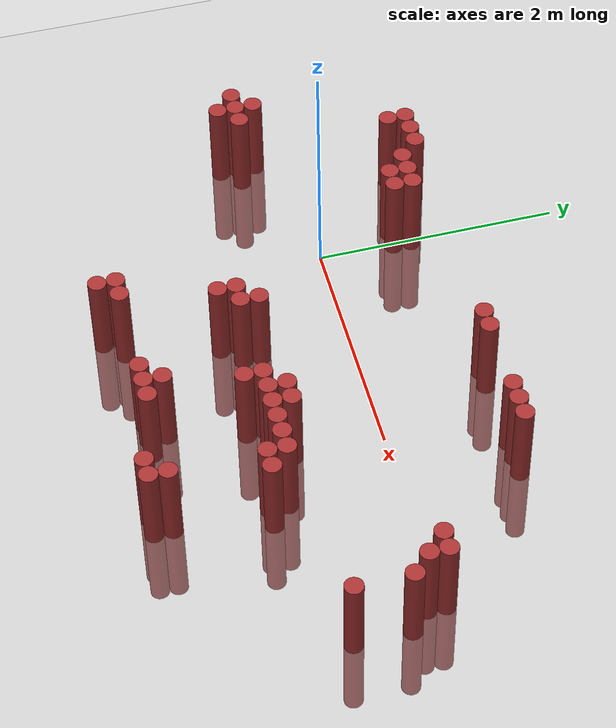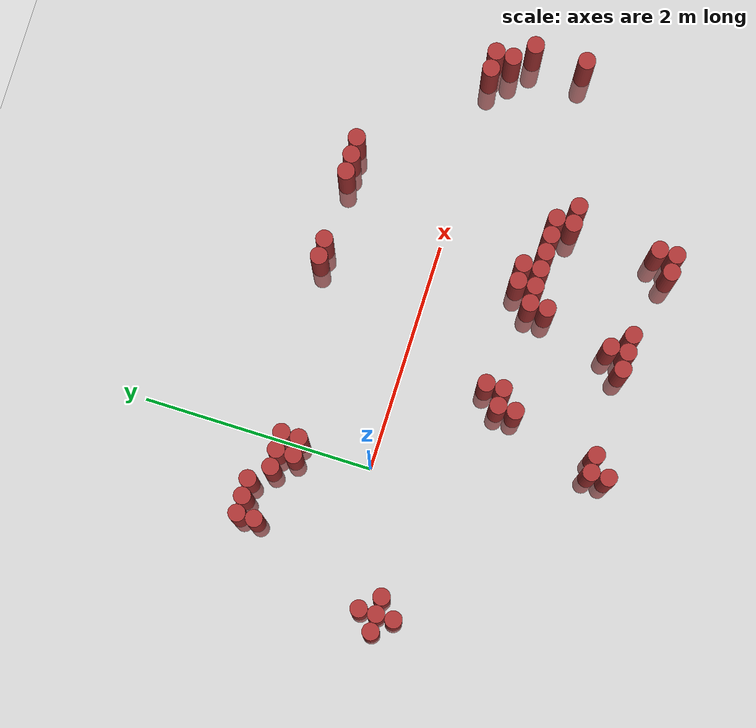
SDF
<sdf version="1.6">
 <world name="default">
  <model name="ground_plane">
   <static>1</static>
   <link name="link">
    <collision name="collision">
     <geometry><plane><normal>0 0 1</normal><size>100 100</size></plane></geometry>
     <surface><friction><ode><mu>100</mu><mu2>50</mu2></ode></friction></surface>
    </collision>
    <visual name="visual">
     <cast_shadows>0</cast_shadows>
     <geometry><plane><normal>0 0 1</normal><size>100 100</size></plane></geometry>
     <material>
      <script><uri>file://media/materials/scripts/gazebo.material</uri><name>Gazebo/Grey</name></script>
     </material>
    </visual>
   </link>
  </model>
  <model name="unit_cylinder_338">
   <static>1</static>
   <pose>-1.325000 -0.425000 0.000000 0.000000 0.000000 0.000000</pose>
   <link name="link">
    <inertial>
     <mass>1</mass>
     <inertia><ixx>0.145833</ixx><ixy>0</ixy><ixz>0</ixz><iyy>0.145833</iyy><iyz>0</iyz><izz>0.125</izz></inertia>
    </inertial>
    <collision name="collision">
     <geometry><cylinder><radius>0.075000</radius><length>1.5</length></cylinder></geometry>
    </collision>
    <visual name="visual">
     <geometry><cylinder><radius>0.075000</radius><length>1.5</length></cylinder></geometry>
     <material>
      <ambient>0.648000 0.192000 0.192000 1</ambient>
      <diffuse>0.648000 0.192000 0.192000 1</diffuse>
     </material>
     <material>
      <script><name>Gazebo/Grey</name><uri>file://media/materials/scripts/gazebo.material</uri></script>
     </material>
    </visual>
   </link>
  </model>
  <model name="unit_cylinder_340">
   <static>1</static>
   <pose>-1.175000 -0.575000 0.000000 0.000000 0.000000 0.000000</pose>
   <link name="link">
    <inertial>
     <mass>1</mass>
     <inertia><ixx>0.145833</ixx><ixy>0</ixy><ixz>0</ixz><iyy>0.145833</iyy><iyz>0</iyz><izz>0.125</izz></inertia>
    </inertial>
    <collision name="collision">
     <geometry><cylinder><radius>0.075000</radius><length>1.5</length></cylinder></geometry>
    </collision>
    <visual name="visual">
     <geometry><cylinder><radius>0.075000</radius><length>1.5</length></cylinder></geometry>
     <material>
      <ambient>0.648000 0.192000 0.192000 1</ambient>
      <diffuse>0.648000 0.192000 0.192000 1</diffuse>
     </material>
     <material>
      <script><name>Gazebo/Grey</name><uri>file://media/materials/scripts/gazebo.material</uri></script>
     </material>
    </visual>
   </link>
  </model>
  <model name="unit_cylinder_341">
   <static>1</static>
   <pose>-1.175000 -0.425000 0.000000 0.000000 0.000000 0.000000</pose>
   <link name="link">
    <inertial>
     <mass>1</mass>
     <inertia><ixx>0.145833</ixx><ixy>0</ixy><ixz>0</ixz><iyy>0.145833</iyy><iyz>0</iyz><izz>0.125</izz></inertia>
    </inertial>
    <collision name="collision">
     <geometry><cylinder><radius>0.075000</radius><length>1.5</length></cylinder></geometry>
    </collision>
    <visual name="visual">
     <geometry><cylinder><radius>0.075000</radius><length>1.5</length></cylinder></geometry>
     <material>
      <ambient>0.648000 0.192000 0.192000 1</ambient>
      <diffuse>0.648000 0.192000 0.192000 1</diffuse>
     </material>
     <material>
      <script><name>Gazebo/Grey</name><uri>file://media/materials/scripts/gazebo.material</uri></script>
     </material>
    </visual>
   </link>
  </model>
  <model name="unit_cylinder_342">
   <static>1</static>
   <pose>-1.175000 -0.275000 0.000000 0.000000 0.000000 0.000000</pose>
   <link name="link">
    <inertial>
     <mass>1</mass>
     <inertia><ixx>0.145833</ixx><ixy>0</ixy><ixz>0</ixz><iyy>0.145833</iyy><iyz>0</iyz><izz>0.125</izz></inertia>
    </inertial>
    <collision name="collision">
     <geometry><cylinder><radius>0.075000</radius><length>1.5</length></cylinder></geometry>
    </collision>
    <visual name="visual">
     <geometry><cylinder><radius>0.075000</radius><length>1.5</length></cylinder></geometry>
     <material>
      <ambient>0.648000 0.192000 0.192000 1</ambient>
      <diffuse>0.648000 0.192000 0.192000 1</diffuse>
     </material>
     <material>
      <script><name>Gazebo/Grey</name><uri>file://media/materials/scripts/gazebo.material</uri></script>
     </material>
    </visual>
   </link>
  </model>
  <model name="unit_cylinder_343">
   <static>1</static>
   <pose>-1.025000 -0.425000 0.000000 0.000000 0.000000 0.000000</pose>
   <link name="link">
    <inertial>
     <mass>1</mass>
     <inertia><ixx>0.145833</ixx><ixy>0</ixy><ixz>0</ixz><iyy>0.145833</iyy><iyz>0</iyz><izz>0.125</izz></inertia>
    </inertial>
    <collision name="collision">
     <geometry><cylinder><radius>0.075000</radius><length>1.5</length></cylinder></geometry>
    </collision>
    <visual name="visual">
     <geometry><cylinder><radius>0.075000</radius><length>1.5</length></cylinder></geometry>
     <material>
      <ambient>0.648000 0.192000 0.192000 1</ambient>
      <diffuse>0.648000 0.192000 0.192000 1</diffuse>
     </material>
     <material>
      <script><name>Gazebo/Grey</name><uri>file://media/materials/scripts/gazebo.material</uri></script>
     </material>
    </visual>
   </link>
  </model>
  <model name="unit_cylinder_344">
   <static>1</static>
   <pose>-0.725000 0.775000 0.000000 0.000000 0.000000 0.000000</pose>
   <link name="link">
    <inertial>
     <mass>1</mass>
     <inertia><ixx>0.145833</ixx><ixy>0</ixy><ixz>0</ixz><iyy>0.145833</iyy><iyz>0</iyz><izz>0.125</izz></inertia>
    </inertial>
    <collision name="collision">
     <geometry><cylinder><radius>0.075000</radius><length>1.5</length></cylinder></geometry>
    </collision>
    <visual name="visual">
     <geometry><cylinder><radius>0.075000</radius><length>1.5</length></cylinder></geometry>
     <material>
      <ambient>0.648000 0.192000 0.192000 1</ambient>
      <diffuse>0.648000 0.192000 0.192000 1</diffuse>
     </material>
     <material>
      <script><name>Gazebo/Grey</name><uri>file://media/materials/scripts/gazebo.material</uri></script>
     </material>
    </visual>
   </link>
  </model>
  <model name="unit_cylinder_345">
   <static>1</static>
   <pose>-0.725000 0.925000 0.000000 0.000000 0.000000 0.000000</pose>
   <link name="link">
    <inertial>
     <mass>1</mass>
     <inertia><ixx>0.145833</ixx><ixy>0</ixy><ixz>0</ixz><iyy>0.145833</iyy><iyz>0</iyz><izz>0.125</izz></inertia>
    </inertial>
    <collision name="collision">
     <geometry><cylinder><radius>0.075000</radius><length>1.5</length></cylinder></geometry>
    </collision>
    <visual name="visual">
     <geometry><cylinder><radius>0.075000</radius><length>1.5</length></cylinder></geometry>
     <material>
      <ambient>0.648000 0.192000 0.192000 1</ambient>
      <diffuse>0.648000 0.192000 0.192000 1</diffuse>
     </material>
     <material>
      <script><name>Gazebo/Grey</name><uri>file://media/materials/scripts/gazebo.material</uri></script>
     </material>
    </visual>
   </link>
  </model>
  <model name="unit_cylinder_346">
   <static>1</static>
   <pose>-0.575000 0.925000 0.000000 0.000000 0.000000 0.000000</pose>
   <link name="link">
    <inertial>
     <mass>1</mass>
     <inertia><ixx>0.145833</ixx><ixy>0</ixy><ixz>0</ixz><iyy>0.145833</iyy><iyz>0</iyz><izz>0.125</izz></inertia>
    </inertial>
    <collision name="collision">
     <geometry><cylinder><radius>0.075000</radius><length>1.5</length></cylinder></geometry>
    </collision>
    <visual name="visual">
     <geometry><cylinder><radius>0.075000</radius><length>1.5</length></cylinder></geometry>
     <material>
      <ambient>0.648000 0.192000 0.192000 1</ambient>
      <diffuse>0.648000 0.192000 0.192000 1</diffuse>
     </material>
     <material>
      <script><name>Gazebo/Grey</name><uri>file://media/materials/scripts/gazebo.material</uri></script>
     </material>
    </visual>
   </link>
  </model>
  <model name="unit_cylinder_347">
   <static>1</static>
   <pose>-0.425000 0.925000 0.000000 0.000000 0.000000 0.000000</pose>
   <link name="link">
    <inertial>
     <mass>1</mass>
     <inertia><ixx>0.145833</ixx><ixy>0</ixy><ixz>0</ixz><iyy>0.145833</iyy><iyz>0</iyz><izz>0.125</izz></inertia>
    </inertial>
    <collision name="collision">
     <geometry><cylinder><radius>0.075000</radius><length>1.5</length></cylinder></geometry>
    </collision>
    <visual name="visual">
     <geometry><cylinder><radius>0.075000</radius><length>1.5</length></cylinder></geometry>
     <material>
      <ambient>0.648000 0.192000 0.192000 1</ambient>
      <diffuse>0.648000 0.192000 0.192000 1</diffuse>
     </material>
     <material>
      <script><name>Gazebo/Grey</name><uri>file://media/materials/scripts/gazebo.material</uri></script>
     </material>
    </visual>
   </link>
  </model>
  <model name="unit_cylinder_350">
   <static>1</static>
   <pose>-0.275000 0.775000 0.000000 0.000000 0.000000 0.000000</pose>
   <link name="link">
    <inertial>
     <mass>1</mass>
     <inertia><ixx>0.145833</ixx><ixy>0</ixy><ixz>0</ixz><iyy>0.145833</iyy><iyz>0</iyz><izz>0.125</izz></inertia>
    </inertial>
    <collision name="collision">
     <geometry><cylinder><radius>0.075000</radius><length>1.5</length></cylinder></geometry>
    </collision>
    <visual name="visual">
     <geometry><cylinder><radius>0.075000</radius><length>1.5</length></cylinder></geometry>
     <material>
      <ambient>0.648000 0.192000 0.192000 1</ambient>
      <diffuse>0.648000 0.192000 0.192000 1</diffuse>
     </material>
     <material>
      <script><name>Gazebo/Grey</name><uri>file://media/materials/scripts/gazebo.material</uri></script>
     </material>
    </visual>
   </link>
  </model>
  <model name="unit_cylinder_353">
   <static>1</static>
   <pose>-0.125000 0.625000 0.000000 0.000000 0.000000 0.000000</pose>
   <link name="link">
    <inertial>
     <mass>1</mass>
     <inertia><ixx>0.145833</ixx><ixy>0</ixy><ixz>0</ixz><iyy>0.145833</iyy><iyz>0</iyz><izz>0.125</izz></inertia>
    </inertial>
    <collision name="collision">
     <geometry><cylinder><radius>0.075000</radius><length>1.5</length></cylinder></geometry>
    </collision>
    <visual name="visual">
     <geometry><cylinder><radius>0.075000</radius><length>1.5</length></cylinder></geometry>
     <material>
      <ambient>0.648000 0.192000 0.192000 1</ambient>
      <diffuse>0.648000 0.192000 0.192000 1</diffuse>
     </material>
     <material>
      <script><name>Gazebo/Grey</name><uri>file://media/materials/scripts/gazebo.material</uri></script>
     </material>
    </visual>
   </link>
  </model>
  <model name="unit_cylinder_354">
   <static>1</static>
   <pose>-0.125000 0.775000 0.000000 0.000000 0.000000 0.000000</pose>
   <link name="link">
    <inertial>
     <mass>1</mass>
     <inertia><ixx>0.145833</ixx><ixy>0</ixy><ixz>0</ixz><iyy>0.145833</iyy><iyz>0</iyz><izz>0.125</izz></inertia>
    </inertial>
    <collision name="collision">
     <geometry><cylinder><radius>0.075000</radius><length>1.5</length></cylinder></geometry>
    </collision>
    <visual name="visual">
     <geometry><cylinder><radius>0.075000</radius><length>1.5</length></cylinder></geometry>
     <material>
      <ambient>0.648000 0.192000 0.192000 1</ambient>
      <diffuse>0.648000 0.192000 0.192000 1</diffuse>
     </material>
     <material>
      <script><name>Gazebo/Grey</name><uri>file://media/materials/scripts/gazebo.material</uri></script>
     </material>
    </visual>
   </link>
  </model>
  <model name="unit_cylinder_359">
   <static>1</static>
   <pose>0.025000 0.625000 0.000000 0.000000 0.000000 0.000000</pose>
   <link name="link">
    <inertial>
     <mass>1</mass>
     <inertia><ixx>0.145833</ixx><ixy>0</ixy><ixz>0</ixz><iyy>0.145833</iyy><iyz>0</iyz><izz>0.125</izz></inertia>
    </inertial>
    <collision name="collision">
     <geometry><cylinder><radius>0.075000</radius><length>1.5</length></cylinder></geometry>
    </collision>
    <visual name="visual">
     <geometry><cylinder><radius>0.075000</radius><length>1.5</length></cylinder></geometry>
     <material>
      <ambient>0.648000 0.192000 0.192000 1</ambient>
      <diffuse>0.648000 0.192000 0.192000 1</diffuse>
     </material>
     <material>
      <script><name>Gazebo/Grey</name><uri>file://media/materials/scripts/gazebo.material</uri></script>
     </material>
    </visual>
   </link>
  </model>
  <model name="unit_cylinder_360">
   <static>1</static>
   <pose>0.025000 0.775000 0.000000 0.000000 0.000000 0.000000</pose>
   <link name="link">
    <inertial>
     <mass>1</mass>
     <inertia><ixx>0.145833</ixx><ixy>0</ixy><ixz>0</ixz><iyy>0.145833</iyy><iyz>0</iyz><izz>0.125</izz></inertia>
    </inertial>
    <collision name="collision">
     <geometry><cylinder><radius>0.075000</radius><length>1.5</length></cylinder></geometry>
    </collision>
    <visual name="visual">
     <geometry><cylinder><radius>0.075000</radius><length>1.5</length></cylinder></geometry>
     <material>
      <ambient>0.648000 0.192000 0.192000 1</ambient>
      <diffuse>0.648000 0.192000 0.192000 1</diffuse>
     </material>
     <material>
      <script><name>Gazebo/Grey</name><uri>file://media/materials/scripts/gazebo.material</uri></script>
     </material>
    </visual>
   </link>
  </model>
  <model name="unit_cylinder_365">
   <static>1</static>
   <pose>0.475000 -1.925000 0.000000 0.000000 0.000000 0.000000</pose>
   <link name="link">
    <inertial>
     <mass>1</mass>
     <inertia><ixx>0.145833</ixx><ixy>0</ixy><ixz>0</ixz><iyy>0.145833</iyy><iyz>0</iyz><izz>0.125</izz></inertia>
    </inertial>
    <collision name="collision">
     <geometry><cylinder><radius>0.075000</radius><length>1.5</length></cylinder></geometry>
    </collision>
    <visual name="visual">
     <geometry><cylinder><radius>0.075000</radius><length>1.5</length></cylinder></geometry>
     <material>
      <ambient>0.648000 0.192000 0.192000 1</ambient>
      <diffuse>0.648000 0.192000 0.192000 1</diffuse>
     </material>
     <material>
      <script><name>Gazebo/Grey</name><uri>file://media/materials/scripts/gazebo.material</uri></script>
     </material>
    </visual>
   </link>
  </model>
  <model name="unit_cylinder_366">
   <static>1</static>
   <pose>0.475000 -1.775000 0.000000 0.000000 0.000000 0.000000</pose>
   <link name="link">
    <inertial>
     <mass>1</mass>
     <inertia><ixx>0.145833</ixx><ixy>0</ixy><ixz>0</ixz><iyy>0.145833</iyy><iyz>0</iyz><izz>0.125</izz></inertia>
    </inertial>
    <collision name="collision">
     <geometry><cylinder><radius>0.075000</radius><length>1.5</length></cylinder></geometry>
    </collision>
    <visual name="visual">
     <geometry><cylinder><radius>0.075000</radius><length>1.5</length></cylinder></geometry>
     <material>
      <ambient>0.648000 0.192000 0.192000 1</ambient>
      <diffuse>0.648000 0.192000 0.192000 1</diffuse>
     </material>
     <material>
      <script><name>Gazebo/Grey</name><uri>file://media/materials/scripts/gazebo.material</uri></script>
     </material>
    </visual>
   </link>
  </model>
  <model name="unit_cylinder_370">
   <static>1</static>
   <pose>0.625000 -1.775000 0.000000 0.000000 0.000000 0.000000</pose>
   <link name="link">
    <inertial>
     <mass>1</mass>
     <inertia><ixx>0.145833</ixx><ixy>0</ixy><ixz>0</ixz><iyy>0.145833</iyy><iyz>0</iyz><izz>0.125</izz></inertia>
    </inertial>
    <collision name="collision">
     <geometry><cylinder><radius>0.075000</radius><length>1.5</length></cylinder></geometry>
    </collision>
    <visual name="visual">
     <geometry><cylinder><radius>0.075000</radius><length>1.5</length></cylinder></geometry>
     <material>
      <ambient>0.648000 0.192000 0.192000 1</ambient>
      <diffuse>0.648000 0.192000 0.192000 1</diffuse>
     </material>
     <material>
      <script><name>Gazebo/Grey</name><uri>file://media/materials/scripts/gazebo.material</uri></script>
     </material>
    </visual>
   </link>
  </model>
  <model name="unit_cylinder_375">
   <static>1</static>
   <pose>0.775000 -1.025000 0.000000 0.000000 0.000000 0.000000</pose>
   <link name="link">
    <inertial>
     <mass>1</mass>
     <inertia><ixx>0.145833</ixx><ixy>0</ixy><ixz>0</ixz><iyy>0.145833</iyy><iyz>0</iyz><izz>0.125</izz></inertia>
    </inertial>
    <collision name="collision">
     <geometry><cylinder><radius>0.075000</radius><length>1.5</length></cylinder></geometry>
    </collision>
    <visual name="visual">
     <geometry><cylinder><radius>0.075000</radius><length>1.5</length></cylinder></geometry>
     <material>
      <ambient>0.648000 0.192000 0.192000 1</ambient>
      <diffuse>0.648000 0.192000 0.192000 1</diffuse>
     </material>
     <material>
      <script><name>Gazebo/Grey</name><uri>file://media/materials/scripts/gazebo.material</uri></script>
     </material>
    </visual>
   </link>
  </model>
  <model name="unit_cylinder_376">
   <static>1</static>
   <pose>0.775000 -0.875000 0.000000 0.000000 0.000000 0.000000</pose>
   <link name="link">
    <inertial>
     <mass>1</mass>
     <inertia><ixx>0.145833</ixx><ixy>0</ixy><ixz>0</ixz><iyy>0.145833</iyy><iyz>0</iyz><izz>0.125</izz></inertia>
    </inertial>
    <collision name="collision">
     <geometry><cylinder><radius>0.075000</radius><length>1.5</length></cylinder></geometry>
    </collision>
    <visual name="visual">
     <geometry><cylinder><radius>0.075000</radius><length>1.5</length></cylinder></geometry>
     <material>
      <ambient>0.648000 0.192000 0.192000 1</ambient>
      <diffuse>0.648000 0.192000 0.192000 1</diffuse>
     </material>
     <material>
      <script><name>Gazebo/Grey</name><uri>file://media/materials/scripts/gazebo.material</uri></script>
     </material>
    </visual>
   </link>
  </model>
  <model name="unit_cylinder_378">
   <static>1</static>
   <pose>0.925000 -0.875000 0.000000 0.000000 0.000000 0.000000</pose>
   <link name="link">
    <inertial>
     <mass>1</mass>
     <inertia><ixx>0.145833</ixx><ixy>0</ixy><ixz>0</ixz><iyy>0.145833</iyy><iyz>0</iyz><izz>0.125</izz></inertia>
    </inertial>
    <collision name="collision">
     <geometry><cylinder><radius>0.075000</radius><length>1.5</length></cylinder></geometry>
    </collision>
    <visual name="visual">
     <geometry><cylinder><radius>0.075000</radius><length>1.5</length></cylinder></geometry>
     <material>
      <ambient>0.648000 0.192000 0.192000 1</ambient>
      <diffuse>0.648000 0.192000 0.192000 1</diffuse>
     </material>
     <material>
      <script><name>Gazebo/Grey</name><uri>file://media/materials/scripts/gazebo.material</uri></script>
     </material>
    </visual>
   </link>
  </model>
  <model name="unit_cylinder_379">
   <static>1</static>
   <pose>0.925000 -0.725000 0.000000 0.000000 0.000000 0.000000</pose>
   <link name="link">
    <inertial>
     <mass>1</mass>
     <inertia><ixx>0.145833</ixx><ixy>0</ixy><ixz>0</ixz><iyy>0.145833</iyy><iyz>0</iyz><izz>0.125</izz></inertia>
    </inertial>
    <collision name="collision">
     <geometry><cylinder><radius>0.075000</radius><length>1.5</length></cylinder></geometry>
    </collision>
    <visual name="visual">
     <geometry><cylinder><radius>0.075000</radius><length>1.5</length></cylinder></geometry>
     <material>
      <ambient>0.648000 0.192000 0.192000 1</ambient>
      <diffuse>0.648000 0.192000 0.192000 1</diffuse>
     </material>
     <material>
      <script><name>Gazebo/Grey</name><uri>file://media/materials/scripts/gazebo.material</uri></script>
     </material>
    </visual>
   </link>
  </model>
  <model name="unit_cylinder_383">
   <static>1</static>
   <pose>1.375000 -1.775000 0.000000 0.000000 0.000000 0.000000</pose>
   <link name="link">
    <inertial>
     <mass>1</mass>
     <inertia><ixx>0.145833</ixx><ixy>0</ixy><ixz>0</ixz><iyy>0.145833</iyy><iyz>0</iyz><izz>0.125</izz></inertia>
    </inertial>
    <collision name="collision">
     <geometry><cylinder><radius>0.075000</radius><length>1.5</length></cylinder></geometry>
    </collision>
    <visual name="visual">
     <geometry><cylinder><radius>0.075000</radius><length>1.5</length></cylinder></geometry>
     <material>
      <ambient>0.648000 0.192000 0.192000 1</ambient>
      <diffuse>0.648000 0.192000 0.192000 1</diffuse>
     </material>
     <material>
      <script><name>Gazebo/Grey</name><uri>file://media/materials/scripts/gazebo.material</uri></script>
     </material>
    </visual>
   </link>
  </model>
  <model name="unit_cylinder_384">
   <static>1</static>
   <pose>1.525000 -1.775000 0.000000 0.000000 0.000000 0.000000</pose>
   <link name="link">
    <inertial>
     <mass>1</mass>
     <inertia><ixx>0.145833</ixx><ixy>0</ixy><ixz>0</ixz><iyy>0.145833</iyy><iyz>0</iyz><izz>0.125</izz></inertia>
    </inertial>
    <collision name="collision">
     <geometry><cylinder><radius>0.075000</radius><length>1.5</length></cylinder></geometry>
    </collision>
    <visual name="visual">
     <geometry><cylinder><radius>0.075000</radius><length>1.5</length></cylinder></geometry>
     <material>
      <ambient>0.648000 0.192000 0.192000 1</ambient>
      <diffuse>0.648000 0.192000 0.192000 1</diffuse>
     </material>
     <material>
      <script><name>Gazebo/Grey</name><uri>file://media/materials/scripts/gazebo.material</uri></script>
     </material>
    </visual>
   </link>
  </model>
  <model name="unit_cylinder_385">
   <static>1</static>
   <pose>1.525000 -1.625000 0.000000 0.000000 0.000000 0.000000</pose>
   <link name="link">
    <inertial>
     <mass>1</mass>
     <inertia><ixx>0.145833</ixx><ixy>0</ixy><ixz>0</ixz><iyy>0.145833</iyy><iyz>0</iyz><izz>0.125</izz></inertia>
    </inertial>
    <collision name="collision">
     <geometry><cylinder><radius>0.075000</radius><length>1.5</length></cylinder></geometry>
    </collision>
    <visual name="visual">
     <geometry><cylinder><radius>0.075000</radius><length>1.5</length></cylinder></geometry>
     <material>
      <ambient>0.648000 0.192000 0.192000 1</ambient>
      <diffuse>0.648000 0.192000 0.192000 1</diffuse>
     </material>
     <material>
      <script><name>Gazebo/Grey</name><uri>file://media/materials/scripts/gazebo.material</uri></script>
     </material>
    </visual>
   </link>
  </model>
  <model name="unit_cylinder_386">
   <static>1</static>
   <pose>1.525000 0.925000 0.000000 0.000000 0.000000 0.000000</pose>
   <link name="link">
    <inertial>
     <mass>1</mass>
     <inertia><ixx>0.145833</ixx><ixy>0</ixy><ixz>0</ixz><iyy>0.145833</iyy><iyz>0</iyz><izz>0.125</izz></inertia>
    </inertial>
    <collision name="collision">
     <geometry><cylinder><radius>0.075000</radius><length>1.5</length></cylinder></geometry>
    </collision>
    <visual name="visual">
     <geometry><cylinder><radius>0.075000</radius><length>1.5</length></cylinder></geometry>
     <material>
      <ambient>0.648000 0.192000 0.192000 1</ambient>
      <diffuse>0.648000 0.192000 0.192000 1</diffuse>
     </material>
     <material>
      <script><name>Gazebo/Grey</name><uri>file://media/materials/scripts/gazebo.material</uri></script>
     </material>
    </visual>
   </link>
  </model>
  <model name="unit_cylinder_387">
   <static>1</static>
   <pose>1.675000 -1.775000 0.000000 0.000000 0.000000 0.000000</pose>
   <link name="link">
    <inertial>
     <mass>1</mass>
     <inertia><ixx>0.145833</ixx><ixy>0</ixy><ixz>0</ixz><iyy>0.145833</iyy><iyz>0</iyz><izz>0.125</izz></inertia>
    </inertial>
    <collision name="collision">
     <geometry><cylinder><radius>0.075000</radius><length>1.5</length></cylinder></geometry>
    </collision>
    <visual name="visual">
     <geometry><cylinder><radius>0.075000</radius><length>1.5</length></cylinder></geometry>
     <material>
      <ambient>0.648000 0.192000 0.192000 1</ambient>
      <diffuse>0.648000 0.192000 0.192000 1</diffuse>
     </material>
     <material>
      <script><name>Gazebo/Grey</name><uri>file://media/materials/scripts/gazebo.material</uri></script>
     </material>
    </visual>
   </link>
  </model>
  <model name="unit_cylinder_388">
   <static>1</static>
   <pose>1.675000 -1.025000 0.000000 0.000000 0.000000 0.000000</pose>
   <link name="link">
    <inertial>
     <mass>1</mass>
     <inertia><ixx>0.145833</ixx><ixy>0</ixy><ixz>0</ixz><iyy>0.145833</iyy><iyz>0</iyz><izz>0.125</izz></inertia>
    </inertial>
    <collision name="collision">
     <geometry><cylinder><radius>0.075000</radius><length>1.5</length></cylinder></geometry>
    </collision>
    <visual name="visual">
     <geometry><cylinder><radius>0.075000</radius><length>1.5</length></cylinder></geometry>
     <material>
      <ambient>0.648000 0.192000 0.192000 1</ambient>
      <diffuse>0.648000 0.192000 0.192000 1</diffuse>
     </material>
     <material>
      <script><name>Gazebo/Grey</name><uri>file://media/materials/scripts/gazebo.material</uri></script>
     </material>
    </visual>
   </link>
  </model>
  <model name="unit_cylinder_389">
   <static>1</static>
   <pose>1.675000 -0.875000 0.000000 0.000000 0.000000 0.000000</pose>
   <link name="link">
    <inertial>
     <mass>1</mass>
     <inertia><ixx>0.145833</ixx><ixy>0</ixy><ixz>0</ixz><iyy>0.145833</iyy><iyz>0</iyz><izz>0.125</izz></inertia>
    </inertial>
    <collision name="collision">
     <geometry><cylinder><radius>0.075000</radius><length>1.5</length></cylinder></geometry>
    </collision>
    <visual name="visual">
     <geometry><cylinder><radius>0.075000</radius><length>1.5</length></cylinder></geometry>
     <material>
      <ambient>0.648000 0.192000 0.192000 1</ambient>
      <diffuse>0.648000 0.192000 0.192000 1</diffuse>
     </material>
     <material>
      <script><name>Gazebo/Grey</name><uri>file://media/materials/scripts/gazebo.material</uri></script>
     </material>
    </visual>
   </link>
  </model>
  <model name="unit_cylinder_390">
   <static>1</static>
   <pose>1.675000 0.925000 0.000000 0.000000 0.000000 0.000000</pose>
   <link name="link">
    <inertial>
     <mass>1</mass>
     <inertia><ixx>0.145833</ixx><ixy>0</ixy><ixz>0</ixz><iyy>0.145833</iyy><iyz>0</iyz><izz>0.125</izz></inertia>
    </inertial>
    <collision name="collision">
     <geometry><cylinder><radius>0.075000</radius><length>1.5</length></cylinder></geometry>
    </collision>
    <visual name="visual">
     <geometry><cylinder><radius>0.075000</radius><length>1.5</length></cylinder></geometry>
     <material>
      <ambient>0.648000 0.192000 0.192000 1</ambient>
      <diffuse>0.648000 0.192000 0.192000 1</diffuse>
     </material>
     <material>
      <script><name>Gazebo/Grey</name><uri>file://media/materials/scripts/gazebo.material</uri></script>
     </material>
    </visual>
   </link>
  </model>
  <model name="unit_cylinder_392">
   <static>1</static>
   <pose>1.825000 -0.875000 0.000000 0.000000 0.000000 0.000000</pose>
   <link name="link">
    <inertial>
     <mass>1</mass>
     <inertia><ixx>0.145833</ixx><ixy>0</ixy><ixz>0</ixz><iyy>0.145833</iyy><iyz>0</iyz><izz>0.125</izz></inertia>
    </inertial>
    <collision name="collision">
     <geometry><cylinder><radius>0.075000</radius><length>1.5</length></cylinder></geometry>
    </collision>
    <visual name="visual">
     <geometry><cylinder><radius>0.075000</radius><length>1.5</length></cylinder></geometry>
     <material>
      <ambient>0.648000 0.192000 0.192000 1</ambient>
      <diffuse>0.648000 0.192000 0.192000 1</diffuse>
     </material>
     <material>
      <script><name>Gazebo/Grey</name><uri>file://media/materials/scripts/gazebo.material</uri></script>
     </material>
    </visual>
   </link>
  </model>
  <model name="unit_cylinder_393">
   <static>1</static>
   <pose>1.825000 -0.725000 0.000000 0.000000 0.000000 0.000000</pose>
   <link name="link">
    <inertial>
     <mass>1</mass>
     <inertia><ixx>0.145833</ixx><ixy>0</ixy><ixz>0</ixz><iyy>0.145833</iyy><iyz>0</iyz><izz>0.125</izz></inertia>
    </inertial>
    <collision name="collision">
     <geometry><cylinder><radius>0.075000</radius><length>1.5</length></cylinder></geometry>
    </collision>
    <visual name="visual">
     <geometry><cylinder><radius>0.075000</radius><length>1.5</length></cylinder></geometry>
     <material>
      <ambient>0.648000 0.192000 0.192000 1</ambient>
      <diffuse>0.648000 0.192000 0.192000 1</diffuse>
     </material>
     <material>
      <script><name>Gazebo/Grey</name><uri>file://media/materials/scripts/gazebo.material</uri></script>
     </material>
    </visual>
   </link>
  </model>
  <model name="unit_cylinder_394">
   <static>1</static>
   <pose>1.975000 -0.875000 0.000000 0.000000 0.000000 0.000000</pose>
   <link name="link">
    <inertial>
     <mass>1</mass>
     <inertia><ixx>0.145833</ixx><ixy>0</ixy><ixz>0</ixz><iyy>0.145833</iyy><iyz>0</iyz><izz>0.125</izz></inertia>
    </inertial>
    <collision name="collision">
     <geometry><cylinder><radius>0.075000</radius><length>1.5</length></cylinder></geometry>
    </collision>
    <visual name="visual">
     <geometry><cylinder><radius>0.075000</radius><length>1.5</length></cylinder></geometry>
     <material>
      <ambient>0.648000 0.192000 0.192000 1</ambient>
      <diffuse>0.648000 0.192000 0.192000 1</diffuse>
     </material>
     <material>
      <script><name>Gazebo/Grey</name><uri>file://media/materials/scripts/gazebo.material</uri></script>
     </material>
    </visual>
   </link>
  </model>
  <model name="unit_cylinder_395">
   <static>1</static>
   <pose>1.975000 -0.725000 0.000000 0.000000 0.000000 0.000000</pose>
   <link name="link">
    <inertial>
     <mass>1</mass>
     <inertia><ixx>0.145833</ixx><ixy>0</ixy><ixz>0</ixz><iyy>0.145833</iyy><iyz>0</iyz><izz>0.125</izz></inertia>
    </inertial>
    <collision name="collision">
     <geometry><cylinder><radius>0.075000</radius><length>1.5</length></cylinder></geometry>
    </collision>
    <visual name="visual">
     <geometry><cylinder><radius>0.075000</radius><length>1.5</length></cylinder></geometry>
     <material>
      <ambient>0.648000 0.192000 0.192000 1</ambient>
      <diffuse>0.648000 0.192000 0.192000 1</diffuse>
     </material>
     <material>
      <script><name>Gazebo/Grey</name><uri>file://media/materials/scripts/gazebo.material</uri></script>
     </material>
    </visual>
   </link>
  </model>
  <model name="unit_cylinder_397">
   <static>1</static>
   <pose>2.125000 -0.875000 0.000000 0.000000 0.000000 0.000000</pose>
   <link name="link">
    <inertial>
     <mass>1</mass>
     <inertia><ixx>0.145833</ixx><ixy>0</ixy><ixz>0</ixz><iyy>0.145833</iyy><iyz>0</iyz><izz>0.125</izz></inertia>
    </inertial>
    <collision name="collision">
     <geometry><cylinder><radius>0.075000</radius><length>1.5</length></cylinder></geometry>
    </collision>
    <visual name="visual">
     <geometry><cylinder><radius>0.075000</radius><length>1.5</length></cylinder></geometry>
     <material>
      <ambient>0.648000 0.192000 0.192000 1</ambient>
      <diffuse>0.648000 0.192000 0.192000 1</diffuse>
     </material>
     <material>
      <script><name>Gazebo/Grey</name><uri>file://media/materials/scripts/gazebo.material</uri></script>
     </material>
    </visual>
   </link>
  </model>
  <model name="unit_cylinder_400">
   <static>1</static>
   <pose>2.275000 -1.925000 0.000000 0.000000 0.000000 0.000000</pose>
   <link name="link">
    <inertial>
     <mass>1</mass>
     <inertia><ixx>0.145833</ixx><ixy>0</ixy><ixz>0</ixz><iyy>0.145833</iyy><iyz>0</iyz><izz>0.125</izz></inertia>
    </inertial>
    <collision name="collision">
     <geometry><cylinder><radius>0.075000</radius><length>1.5</length></cylinder></geometry>
    </collision>
    <visual name="visual">
     <geometry><cylinder><radius>0.075000</radius><length>1.5</length></cylinder></geometry>
     <material>
      <ambient>0.648000 0.192000 0.192000 1</ambient>
      <diffuse>0.648000 0.192000 0.192000 1</diffuse>
     </material>
     <material>
      <script><name>Gazebo/Grey</name><uri>file://media/materials/scripts/gazebo.material</uri></script>
     </material>
    </visual>
   </link>
  </model>
  <model name="unit_cylinder_401">
   <static>1</static>
   <pose>2.275000 -0.875000 0.000000 0.000000 0.000000 0.000000</pose>
   <link name="link">
    <inertial>
     <mass>1</mass>
     <inertia><ixx>0.145833</ixx><ixy>0</ixy><ixz>0</ixz><iyy>0.145833</iyy><iyz>0</iyz><izz>0.125</izz></inertia>
    </inertial>
    <collision name="collision">
     <geometry><cylinder><radius>0.075000</radius><length>1.5</length></cylinder></geometry>
    </collision>
    <visual name="visual">
     <geometry><cylinder><radius>0.075000</radius><length>1.5</length></cylinder></geometry>
     <material>
      <ambient>0.648000 0.192000 0.192000 1</ambient>
      <diffuse>0.648000 0.192000 0.192000 1</diffuse>
     </material>
     <material>
      <script><name>Gazebo/Grey</name><uri>file://media/materials/scripts/gazebo.material</uri></script>
     </material>
    </visual>
   </link>
  </model>
  <model name="unit_cylinder_402">
   <static>1</static>
   <pose>2.275000 0.925000 0.000000 0.000000 0.000000 0.000000</pose>
   <link name="link">
    <inertial>
     <mass>1</mass>
     <inertia><ixx>0.145833</ixx><ixy>0</ixy><ixz>0</ixz><iyy>0.145833</iyy><iyz>0</iyz><izz>0.125</izz></inertia>
    </inertial>
    <collision name="collision">
     <geometry><cylinder><radius>0.075000</radius><length>1.5</length></cylinder></geometry>
    </collision>
    <visual name="visual">
     <geometry><cylinder><radius>0.075000</radius><length>1.5</length></cylinder></geometry>
     <material>
      <ambient>0.648000 0.192000 0.192000 1</ambient>
      <diffuse>0.648000 0.192000 0.192000 1</diffuse>
     </material>
     <material>
      <script><name>Gazebo/Grey</name><uri>file://media/materials/scripts/gazebo.material</uri></script>
     </material>
    </visual>
   </link>
  </model>
  <model name="unit_cylinder_404">
   <static>1</static>
   <pose>2.425000 -1.925000 0.000000 0.000000 0.000000 0.000000</pose>
   <link name="link">
    <inertial>
     <mass>1</mass>
     <inertia><ixx>0.145833</ixx><ixy>0</ixy><ixz>0</ixz><iyy>0.145833</iyy><iyz>0</iyz><izz>0.125</izz></inertia>
    </inertial>
    <collision name="collision">
     <geometry><cylinder><radius>0.075000</radius><length>1.5</length></cylinder></geometry>
    </collision>
    <visual name="visual">
     <geometry><cylinder><radius>0.075000</radius><length>1.5</length></cylinder></geometry>
     <material>
      <ambient>0.648000 0.192000 0.192000 1</ambient>
      <diffuse>0.648000 0.192000 0.192000 1</diffuse>
     </material>
     <material>
      <script><name>Gazebo/Grey</name><uri>file://media/materials/scripts/gazebo.material</uri></script>
     </material>
    </visual>
   </link>
  </model>
  <model name="unit_cylinder_405">
   <static>1</static>
   <pose>2.425000 -1.775000 0.000000 0.000000 0.000000 0.000000</pose>
   <link name="link">
    <inertial>
     <mass>1</mass>
     <inertia><ixx>0.145833</ixx><ixy>0</ixy><ixz>0</ixz><iyy>0.145833</iyy><iyz>0</iyz><izz>0.125</izz></inertia>
    </inertial>
    <collision name="collision">
     <geometry><cylinder><radius>0.075000</radius><length>1.5</length></cylinder></geometry>
    </collision>
    <visual name="visual">
     <geometry><cylinder><radius>0.075000</radius><length>1.5</length></cylinder></geometry>
     <material>
      <ambient>0.648000 0.192000 0.192000 1</ambient>
      <diffuse>0.648000 0.192000 0.192000 1</diffuse>
     </material>
     <material>
      <script><name>Gazebo/Grey</name><uri>file://media/materials/scripts/gazebo.material</uri></script>
     </material>
    </visual>
   </link>
  </model>
  <model name="unit_cylinder_406">
   <static>1</static>
   <pose>2.425000 -1.025000 0.000000 0.000000 0.000000 0.000000</pose>
   <link name="link">
    <inertial>
     <mass>1</mass>
     <inertia><ixx>0.145833</ixx><ixy>0</ixy><ixz>0</ixz><iyy>0.145833</iyy><iyz>0</iyz><izz>0.125</izz></inertia>
    </inertial>
    <collision name="collision">
     <geometry><cylinder><radius>0.075000</radius><length>1.5</length></cylinder></geometry>
    </collision>
    <visual name="visual">
     <geometry><cylinder><radius>0.075000</radius><length>1.5</length></cylinder></geometry>
     <material>
      <ambient>0.648000 0.192000 0.192000 1</ambient>
      <diffuse>0.648000 0.192000 0.192000 1</diffuse>
     </material>
     <material>
      <script><name>Gazebo/Grey</name><uri>file://media/materials/scripts/gazebo.material</uri></script>
     </material>
    </visual>
   </link>
  </model>
  <model name="unit_cylinder_407">
   <static>1</static>
   <pose>2.425000 -0.875000 0.000000 0.000000 0.000000 0.000000</pose>
   <link name="link">
    <inertial>
     <mass>1</mass>
     <inertia><ixx>0.145833</ixx><ixy>0</ixy><ixz>0</ixz><iyy>0.145833</iyy><iyz>0</iyz><izz>0.125</izz></inertia>
    </inertial>
    <collision name="collision">
     <geometry><cylinder><radius>0.075000</radius><length>1.5</length></cylinder></geometry>
    </collision>
    <visual name="visual">
     <geometry><cylinder><radius>0.075000</radius><length>1.5</length></cylinder></geometry>
     <material>
      <ambient>0.648000 0.192000 0.192000 1</ambient>
      <diffuse>0.648000 0.192000 0.192000 1</diffuse>
     </material>
     <material>
      <script><name>Gazebo/Grey</name><uri>file://media/materials/scripts/gazebo.material</uri></script>
     </material>
    </visual>
   </link>
  </model>
  <model name="unit_cylinder_408">
   <static>1</static>
   <pose>2.425000 0.925000 0.000000 0.000000 0.000000 0.000000</pose>
   <link name="link">
    <inertial>
     <mass>1</mass>
     <inertia><ixx>0.145833</ixx><ixy>0</ixy><ixz>0</ixz><iyy>0.145833</iyy><iyz>0</iyz><izz>0.125</izz></inertia>
    </inertial>
    <collision name="collision">
     <geometry><cylinder><radius>0.075000</radius><length>1.5</length></cylinder></geometry>
    </collision>
    <visual name="visual">
     <geometry><cylinder><radius>0.075000</radius><length>1.5</length></cylinder></geometry>
     <material>
      <ambient>0.648000 0.192000 0.192000 1</ambient>
      <diffuse>0.648000 0.192000 0.192000 1</diffuse>
     </material>
     <material>
      <script><name>Gazebo/Grey</name><uri>file://media/materials/scripts/gazebo.material</uri></script>
     </material>
    </visual>
   </link>
  </model>
  <model name="unit_cylinder_410">
   <static>1</static>
   <pose>2.575000 -1.025000 0.000000 0.000000 0.000000 0.000000</pose>
   <link name="link">
    <inertial>
     <mass>1</mass>
     <inertia><ixx>0.145833</ixx><ixy>0</ixy><ixz>0</ixz><iyy>0.145833</iyy><iyz>0</iyz><izz>0.125</izz></inertia>
    </inertial>
    <collision name="collision">
     <geometry><cylinder><radius>0.075000</radius><length>1.5</length></cylinder></geometry>
    </collision>
    <visual name="visual">
     <geometry><cylinder><radius>0.075000</radius><length>1.5</length></cylinder></geometry>
     <material>
      <ambient>0.648000 0.192000 0.192000 1</ambient>
      <diffuse>0.648000 0.192000 0.192000 1</diffuse>
     </material>
     <material>
      <script><name>Gazebo/Grey</name><uri>file://media/materials/scripts/gazebo.material</uri></script>
     </material>
    </visual>
   </link>
  </model>
  <model name="unit_cylinder_411">
   <static>1</static>
   <pose>2.575000 0.925000 0.000000 0.000000 0.000000 0.000000</pose>
   <link name="link">
    <inertial>
     <mass>1</mass>
     <inertia><ixx>0.145833</ixx><ixy>0</ixy><ixz>0</ixz><iyy>0.145833</iyy><iyz>0</iyz><izz>0.125</izz></inertia>
    </inertial>
    <collision name="collision">
     <geometry><cylinder><radius>0.075000</radius><length>1.5</length></cylinder></geometry>
    </collision>
    <visual name="visual">
     <geometry><cylinder><radius>0.075000</radius><length>1.5</length></cylinder></geometry>
     <material>
      <ambient>0.648000 0.192000 0.192000 1</ambient>
      <diffuse>0.648000 0.192000 0.192000 1</diffuse>
     </material>
     <material>
      <script><name>Gazebo/Grey</name><uri>file://media/materials/scripts/gazebo.material</uri></script>
     </material>
    </visual>
   </link>
  </model>
  <model name="unit_cylinder_423">
   <static>1</static>
   <pose>3.475000 0.025000 0.000000 0.000000 0.000000 0.000000</pose>
   <link name="link">
    <inertial>
     <mass>1</mass>
     <inertia><ixx>0.145833</ixx><ixy>0</ixy><ixz>0</ixz><iyy>0.145833</iyy><iyz>0</iyz><izz>0.125</izz></inertia>
    </inertial>
    <collision name="collision">
     <geometry><cylinder><radius>0.075000</radius><length>1.5</length></cylinder></geometry>
    </collision>
    <visual name="visual">
     <geometry><cylinder><radius>0.075000</radius><length>1.5</length></cylinder></geometry>
     <material>
      <ambient>0.648000 0.192000 0.192000 1</ambient>
      <diffuse>0.648000 0.192000 0.192000 1</diffuse>
     </material>
     <material>
      <script><name>Gazebo/Grey</name><uri>file://media/materials/scripts/gazebo.material</uri></script>
     </material>
    </visual>
   </link>
  </model>
  <model name="unit_cylinder_424">
   <static>1</static>
   <pose>3.625000 -0.125000 0.000000 0.000000 0.000000 0.000000</pose>
   <link name="link">
    <inertial>
     <mass>1</mass>
     <inertia><ixx>0.145833</ixx><ixy>0</ixy><ixz>0</ixz><iyy>0.145833</iyy><iyz>0</iyz><izz>0.125</izz></inertia>
    </inertial>
    <collision name="collision">
     <geometry><cylinder><radius>0.075000</radius><length>1.5</length></cylinder></geometry>
    </collision>
    <visual name="visual">
     <geometry><cylinder><radius>0.075000</radius><length>1.5</length></cylinder></geometry>
     <material>
      <ambient>0.648000 0.192000 0.192000 1</ambient>
      <diffuse>0.648000 0.192000 0.192000 1</diffuse>
     </material>
     <material>
      <script><name>Gazebo/Grey</name><uri>file://media/materials/scripts/gazebo.material</uri></script>
     </material>
    </visual>
   </link>
  </model>
  <model name="unit_cylinder_425">
   <static>1</static>
   <pose>3.625000 0.025000 0.000000 0.000000 0.000000 0.000000</pose>
   <link name="link">
    <inertial>
     <mass>1</mass>
     <inertia><ixx>0.145833</ixx><ixy>0</ixy><ixz>0</ixz><iyy>0.145833</iyy><iyz>0</iyz><izz>0.125</izz></inertia>
    </inertial>
    <collision name="collision">
     <geometry><cylinder><radius>0.075000</radius><length>1.5</length></cylinder></geometry>
    </collision>
    <visual name="visual">
     <geometry><cylinder><radius>0.075000</radius><length>1.5</length></cylinder></geometry>
     <material>
      <ambient>0.648000 0.192000 0.192000 1</ambient>
      <diffuse>0.648000 0.192000 0.192000 1</diffuse>
     </material>
     <material>
      <script><name>Gazebo/Grey</name><uri>file://media/materials/scripts/gazebo.material</uri></script>
     </material>
    </visual>
   </link>
  </model>
  <model name="unit_cylinder_427">
   <static>1</static>
   <pose>3.775000 -0.725000 0.000000 0.000000 0.000000 0.000000</pose>
   <link name="link">
    <inertial>
     <mass>1</mass>
     <inertia><ixx>0.145833</ixx><ixy>0</ixy><ixz>0</ixz><iyy>0.145833</iyy><iyz>0</iyz><izz>0.125</izz></inertia>
    </inertial>
    <collision name="collision">
     <geometry><cylinder><radius>0.075000</radius><length>1.5</length></cylinder></geometry>
    </collision>
    <visual name="visual">
     <geometry><cylinder><radius>0.075000</radius><length>1.5</length></cylinder></geometry>
     <material>
      <ambient>0.648000 0.192000 0.192000 1</ambient>
      <diffuse>0.648000 0.192000 0.192000 1</diffuse>
     </material>
     <material>
      <script><name>Gazebo/Grey</name><uri>file://media/materials/scripts/gazebo.material</uri></script>
     </material>
    </visual>
   </link>
  </model>
  <model name="unit_cylinder_428">
   <static>1</static>
   <pose>3.775000 -0.275000 0.000000 0.000000 0.000000 0.000000</pose>
   <link name="link">
    <inertial>
     <mass>1</mass>
     <inertia><ixx>0.145833</ixx><ixy>0</ixy><ixz>0</ixz><iyy>0.145833</iyy><iyz>0</iyz><izz>0.125</izz></inertia>
    </inertial>
    <collision name="collision">
     <geometry><cylinder><radius>0.075000</radius><length>1.5</length></cylinder></geometry>
    </collision>
    <visual name="visual">
     <geometry><cylinder><radius>0.075000</radius><length>1.5</length></cylinder></geometry>
     <material>
      <ambient>0.648000 0.192000 0.192000 1</ambient>
      <diffuse>0.648000 0.192000 0.192000 1</diffuse>
     </material>
     <material>
      <script><name>Gazebo/Grey</name><uri>file://media/materials/scripts/gazebo.material</uri></script>
     </material>
    </visual>
   </link>
  </model>
 </world>
</sdf>
